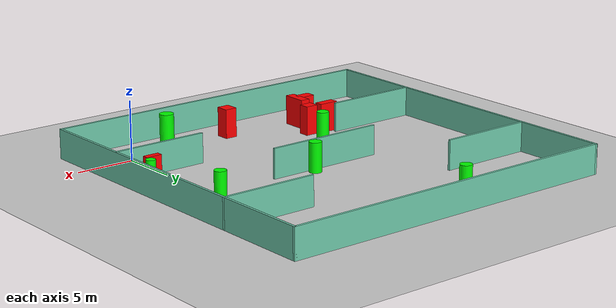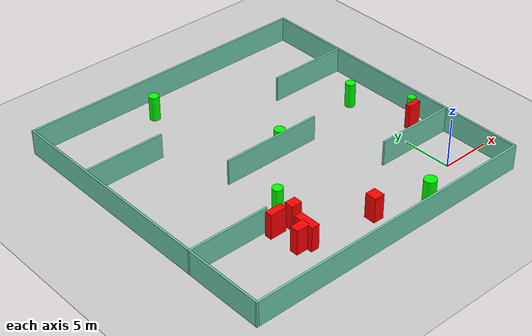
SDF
<sdf version="1.7">
 <world name="default">
  <light name="sun" type="directional">
   <pose>0 0 10 0 -0 0</pose>
   <diffuse>0.8 0.8 0.8 1</diffuse>
   <specular>0.2 0.2 0.2 1</specular>
   <attenuation>
    <range>1000</range>
    <constant>0.9</constant>
    <linear>0.01</linear>
    <quadratic>0.001</quadratic>
   </attenuation>
   <direction>-0.5 0.1 -0.9</direction>
   <spot><inner_angle>0</inner_angle><outer_angle>0</outer_angle><falloff>0</falloff></spot>
  </light>
  <model name="ground_plane">
   <static>1</static>
   <link name="link">
    <collision name="collision">
     <geometry><plane><normal>0 0 1</normal><size>100 100</size></plane></geometry>
     <surface>
      <contact><collide_bitmask>65535</collide_bitmask></contact>
      <friction><ode><mu>100</mu><mu2>50</mu2></ode></friction>
     </surface>
    </collision>
    <visual name="visual">
     <cast_shadows>0</cast_shadows>
     <geometry><plane><normal>0 0 1</normal><size>100 100</size></plane></geometry>
     <material>
      <script><uri>file://media/materials/scripts/gazebo.material</uri><name>Gazebo/Grey</name></script>
     </material>
    </visual>
   </link>
  </model>
  <gravity>0 0 -9.8</gravity>
  <magnetic_field>6e-06 2.3e-05 -4.2e-05</magnetic_field>
  <atmosphere type="adiabatic"/>
  <physics type="ode">
   <max_step_size>0.001</max_step_size>
   <real_time_factor>1</real_time_factor>
   <real_time_update_rate>1000</real_time_update_rate>
  </physics>
  <scene><ambient>0.4 0.4 0.4 1</ambient><background>0.7 0.7 0.7 1</background><shadows>1</shadows></scene>
  <spherical_coordinates>
   <surface_model>EARTH_WGS84</surface_model>
   <latitude_deg>0</latitude_deg>
   <longitude_deg>0</longitude_deg>
   <elevation>0</elevation>
   <heading_deg>0</heading_deg>
  </spherical_coordinates>
  <model name="my_base_walls">
   <link name="Wall_10">
    <collision name="Wall_10_Collision">
     <geometry><box><size>8.2 0.2 2.5</size></box></geometry>
     <pose>0 0 1.25 0 -0 0</pose>
    </collision>
    <visual name="Wall_10_Visual">
     <pose>0 0 1.25 0 -0 0</pose>
     <geometry><box><size>8.2 0.2 2.5</size></box></geometry>
     <material>
      <script><uri>file://media/materials/scripts/gazebo.material</uri><name>Gazebo/Grey</name></script>
      <ambient>0.435294 0.796078 0.67451 1</ambient>
     </material>
     <meta><layer>0</layer></meta>
    </visual>
    <pose>-11 -7 0 0 -0 0</pose>
   </link>
   <link name="Wall_12">
    <collision name="Wall_12_Collision">
     <geometry><box><size>8.2 0.2 2.5</size></box></geometry>
     <pose>0 0 1.25 0 -0 0</pose>
    </collision>
    <visual name="Wall_12_Visual">
     <pose>0 0 1.25 0 -0 0</pose>
     <geometry><box><size>8.2 0.2 2.5</size></box></geometry>
     <material>
      <script><uri>file://media/materials/scripts/gazebo.material</uri><name>Gazebo/Grey</name></script>
      <ambient>0.435294 0.796078 0.67451 1</ambient>
     </material>
     <meta><layer>0</layer></meta>
    </visual>
    <pose>-11 7 0 0 -0 0</pose>
   </link>
   <link name="Wall_14">
    <collision name="Wall_14_Collision">
     <geometry><box><size>8.2 0.2 2.5</size></box></geometry>
     <pose>0 0 1.25 0 -0 0</pose>
    </collision>
    <visual name="Wall_14_Visual">
     <pose>0 0 1.25 0 -0 0</pose>
     <geometry><box><size>8.2 0.2 2.5</size></box></geometry>
     <material>
      <script><uri>file://media/materials/scripts/gazebo.material</uri><name>Gazebo/Grey</name></script>
      <ambient>0.435294 0.796078 0.67451 1</ambient>
     </material>
     <meta><layer>0</layer></meta>
    </visual>
    <pose>11 7 0 0 -0 3.14159</pose>
   </link>
   <link name="Wall_16">
    <collision name="Wall_16_Collision">
     <geometry><box><size>10.2 0.2 2.5</size></box></geometry>
     <pose>0 0 1.25 0 -0 0</pose>
    </collision>
    <visual name="Wall_16_Visual">
     <pose>0 0 1.25 0 -0 0</pose>
     <geometry><box><size>10.2 0.2 2.5</size></box></geometry>
     <material>
      <script><uri>file://media/materials/scripts/gazebo.material</uri><name>Gazebo/Grey</name></script>
      <ambient>0.435294 0.796078 0.67451 1</ambient>
     </material>
     <meta><layer>0</layer></meta>
    </visual>
    <pose>0 0 0 0 -0 3.14159</pose>
   </link>
   <link name="Wall_2">
    <collision name="Wall_2_Collision">
     <geometry><box><size>30.2 0.2 2.5</size></box></geometry>
     <pose>0 0 1.25 0 -0 0</pose>
    </collision>
    <visual name="Wall_2_Visual">
     <pose>0 0 1.25 0 -0 0</pose>
     <geometry><box><size>30.2 0.2 2.5</size></box></geometry>
     <material>
      <script><uri>file://media/materials/scripts/gazebo.material</uri><name>Gazebo/Grey</name></script>
      <ambient>0.435294 0.796078 0.67451 1</ambient>
     </material>
     <meta><layer>0</layer></meta>
    </visual>
    <pose>0 -15 0 0 -0 3.14159</pose>
   </link>
   <link name="Wall_3">
    <collision name="Wall_3_Collision">
     <geometry><box><size>30.2 0.2 2.5</size></box></geometry>
     <pose>0 0 1.25 0 -0 0</pose>
    </collision>
    <visual name="Wall_3_Visual">
     <pose>0 0 1.25 0 -0 0</pose>
     <geometry><box><size>30.2 0.2 2.5</size></box></geometry>
     <material>
      <script><uri>file://media/materials/scripts/gazebo.material</uri><name>Gazebo/Grey</name></script>
      <ambient>0.435294 0.796078 0.67451 1</ambient>
     </material>
     <meta><layer>0</layer></meta>
    </visual>
    <pose>-15 0 0 0 -0 1.5708</pose>
   </link>
   <link name="Wall_4">
    <collision name="Wall_4_Collision">
     <geometry><box><size>30.2 0.2 2.5</size></box></geometry>
     <pose>0 0 1.25 0 -0 0</pose>
    </collision>
    <visual name="Wall_4_Visual">
     <pose>0 0 1.25 0 -0 0</pose>
     <geometry><box><size>30.2 0.2 2.5</size></box></geometry>
     <material>
      <script><uri>file://media/materials/scripts/gazebo.material</uri><name>Gazebo/Grey</name></script>
      <ambient>0.435294 0.796078 0.67451 1</ambient>
     </material>
     <meta><layer>0</layer></meta>
    </visual>
    <pose>0 15 0 0 -0 0</pose>
   </link>
   <link name="Wall_6">
    <collision name="Wall_6_Collision">
     <geometry><box><size>30.2 0.2 2.5</size></box></geometry>
     <pose>0 0 1.25 0 -0 0</pose>
    </collision>
    <visual name="Wall_6_Visual">
     <pose>0 0 1.25 0 -0 0</pose>
     <geometry><box><size>30.2 0.2 2.5</size></box></geometry>
     <material>
      <script><uri>file://media/materials/scripts/gazebo.material</uri><name>Gazebo/Grey</name></script>
      <ambient>0.435294 0.796078 0.67451 1</ambient>
     </material>
     <meta><layer>0</layer></meta>
    </visual>
    <pose>15 0 0 0 -0 1.5708</pose>
   </link>
   <link name="Wall_8">
    <collision name="Wall_8_Collision">
     <geometry><box><size>8.2 0.2 2.5</size></box></geometry>
     <pose>0 0 1.25 0 -0 0</pose>
    </collision>
    <visual name="Wall_8_Visual">
     <pose>0 0 1.25 0 -0 0</pose>
     <geometry><box><size>8.2 0.2 2.5</size></box></geometry>
     <material>
      <script><uri>file://media/materials/scripts/gazebo.material</uri><name>Gazebo/Grey</name></script>
      <ambient>0.435294 0.796078 0.67451 1</ambient>
     </material>
     <meta><layer>0</layer></meta>
    </visual>
    <pose>11 -7 0 0 -0 3.14159</pose>
   </link>
   <static>1</static>
   <pose>-11 11 0 0 -0 0</pose>
  </model>
  <model name="cylinder1">
   <static>1</static>
   <link name="link">
    <inertial>
     <mass>1</mass>
     <inertia><ixx>0.5</ixx><ixy>0</ixy><ixz>0</ixz><iyy>0.5</iyy><iyz>0</iyz><izz>1</izz></inertia>
    </inertial>
    <collision name="collision">
     <geometry><cylinder><radius>0.5219657798590344</radius><length>2.5</length></cylinder></geometry>
    </collision>
    <visual name="visual">
     <geometry><cylinder><radius>0.5219657798590344</radius><length>2.5</length></cylinder></geometry>
     <material>
      <ambient>0 1 0 1</ambient>
      <diffuse>0 1 0 1</diffuse>
      <specular>0.1 0.1 0.1 1</specular>
      <emissive>0 0 0 0</emissive>
     </material>
    </visual>
   </link>
   <pose>-9.565317283463372 11.591743543153596 1.25 0 0 0</pose>
  </model>
  <model name="cylinder2">
   <static>1</static>
   <link name="link">
    <inertial>
     <mass>1</mass>
     <inertia><ixx>0.5</ixx><ixy>0</ixy><ixz>0</ixz><iyy>0.5</iyy><iyz>0</iyz><izz>1</izz></inertia>
    </inertial>
    <collision name="collision">
     <geometry><cylinder><radius>0.3922691962572206</radius><length>2.5</length></cylinder></geometry>
    </collision>
    <visual name="visual">
     <geometry><cylinder><radius>0.3922691962572206</radius><length>2.5</length></cylinder></geometry>
     <material>
      <ambient>0 1 0 1</ambient>
      <diffuse>0 1 0 1</diffuse>
      <specular>0.1 0.1 0.1 1</specular>
      <emissive>0 0 0 0</emissive>
     </material>
    </visual>
   </link>
   <pose>3.023237216129715 7.305496251365518 1.25 0 0 0</pose>
  </model>
  <model name="cylinder3">
   <static>1</static>
   <link name="link">
    <inertial>
     <mass>1</mass>
     <inertia><ixx>0.5</ixx><ixy>0</ixy><ixz>0</ixz><iyy>0.5</iyy><iyz>0</iyz><izz>1</izz></inertia>
    </inertial>
    <collision name="collision">
     <geometry><cylinder><radius>0.5055119163503324</radius><length>2.5</length></cylinder></geometry>
    </collision>
    <visual name="visual">
     <geometry><cylinder><radius>0.5055119163503324</radius><length>2.5</length></cylinder></geometry>
     <material>
      <ambient>0 1 0 1</ambient>
      <diffuse>0 1 0 1</diffuse>
      <specular>0.1 0.1 0.1 1</specular>
      <emissive>0 0 0 0</emissive>
     </material>
    </visual>
   </link>
   <pose>-14.574688057857916 23.343956171218707 1.25 0 0 0</pose>
  </model>
  <model name="cylinder4">
   <static>1</static>
   <link name="link">
    <inertial>
     <mass>1</mass>
     <inertia><ixx>0.5</ixx><ixy>0</ixy><ixz>0</ixz><iyy>0.5</iyy><iyz>0</iyz><izz>1</izz></inertia>
    </inertial>
    <collision name="collision">
     <geometry><cylinder><radius>0.5077850357100223</radius><length>2.5</length></cylinder></geometry>
    </collision>
    <visual name="visual">
     <geometry><cylinder><radius>0.5077850357100223</radius><length>2.5</length></cylinder></geometry>
     <material>
      <ambient>0 1 0 1</ambient>
      <diffuse>0 1 0 1</diffuse>
      <specular>0.1 0.1 0.1 1</specular>
      <emissive>0 0 0 0</emissive>
     </material>
    </visual>
   </link>
   <pose>-15.454144827811955 5.35774519683617 1.25 0 0 0</pose>
  </model>
  <model name="cylinder5">
   <static>1</static>
   <link name="link">
    <inertial>
     <mass>1</mass>
     <inertia><ixx>0.5</ixx><ixy>0</ixy><ixz>0</ixz><iyy>0.5</iyy><iyz>0</iyz><izz>1</izz></inertia>
    </inertial>
    <collision name="collision">
     <geometry><cylinder><radius>0.4939670046292417</radius><length>2.5</length></cylinder></geometry>
    </collision>
    <visual name="visual">
     <geometry><cylinder><radius>0.4939670046292417</radius><length>2.5</length></cylinder></geometry>
     <material>
      <ambient>0 1 0 1</ambient>
      <diffuse>0 1 0 1</diffuse>
      <specular>0.1 0.1 0.1 1</specular>
      <emissive>0 0 0 0</emissive>
     </material>
    </visual>
   </link>
   <pose>0.5239998006802438 12.779665080519326 1.25 0 0 0</pose>
  </model>
  <model name="cylinder6">
   <static>1</static>
   <link name="link">
    <inertial>
     <mass>1</mass>
     <inertia><ixx>0.5</ixx><ixy>0</ixy><ixz>0</ixz><iyy>0.5</iyy><iyz>0</iyz><izz>1</izz></inertia>
    </inertial>
    <collision name="collision">
     <geometry><cylinder><radius>0.5992489807972494</radius><length>2.5</length></cylinder></geometry>
    </collision>
    <visual name="visual">
     <geometry><cylinder><radius>0.5992489807972494</radius><length>2.5</length></cylinder></geometry>
     <material>
      <ambient>0 1 0 1</ambient>
      <diffuse>0 1 0 1</diffuse>
      <specular>0.1 0.1 0.1 1</specular>
      <emissive>0 0 0 0</emissive>
     </material>
    </visual>
   </link>
   <pose>-5.085594161112425 -2.3685976099337083 1.25 0 0 0</pose>
  </model>
  <model name="box1">
   <static>1</static>
   <link name="link">
    <inertial>
     <mass>1</mass>
     <inertia><ixx>0.083</ixx><ixy>0</ixy><ixz>0</ixz><iyy>0.083</iyy><iyz>0</iyz><izz>0.083</izz></inertia>
    </inertial>
    <collision name="collision">
     <geometry><box><size>0.802227432804913 2.092753981802904 2.5</size></box></geometry>
    </collision>
    <visual name="visual">
     <geometry><box><size>0.802227432804913 2.092753981802904 2.5</size></box></geometry>
     <material>
      <ambient>1 0 0 1</ambient>
      <diffuse>1 0 0 1</diffuse>
      <specular>0.1 0.1 0.1 1</specular>
      <emissive>0 0 0 0</emissive>
     </material>
    </visual>
    <sensor name="my_contact" type="contact">
     <contact><collision>box_collision</collision><topic>__default_topic__</topic></contact>
    </sensor>
   </link>
   <pose>-16.607776922457685 0.5654815273350748 1.25 0 0 0</pose>
  </model>
  <model name="box2">
   <static>1</static>
   <link name="link">
    <inertial>
     <mass>1</mass>
     <inertia><ixx>0.083</ixx><ixy>0</ixy><ixz>0</ixz><iyy>0.083</iyy><iyz>0</iyz><izz>0.083</izz></inertia>
    </inertial>
    <collision name="collision">
     <geometry><box><size>1.3599170259146671 0.8480316925354607 2.5</size></box></geometry>
    </collision>
    <visual name="visual">
     <geometry><box><size>1.3599170259146671 0.8480316925354607 2.5</size></box></geometry>
     <material>
      <ambient>1 0 0 1</ambient>
      <diffuse>1 0 0 1</diffuse>
      <specular>0.1 0.1 0.1 1</specular>
      <emissive>0 0 0 0</emissive>
     </material>
    </visual>
    <sensor name="my_contact" type="contact">
     <contact><collision>box_collision</collision><topic>__default_topic__</topic></contact>
    </sensor>
   </link>
   <pose>-17.471714833522032 0.4390593629094752 1.25 0 0 0</pose>
  </model>
  <model name="box3">
   <static>1</static>
   <link name="link">
    <inertial>
     <mass>1</mass>
     <inertia><ixx>0.083</ixx><ixy>0</ixy><ixz>0</ixz><iyy>0.083</iyy><iyz>0</iyz><izz>0.083</izz></inertia>
    </inertial>
    <collision name="collision">
     <geometry><box><size>1.333558970994135 0.5284808222123873 2.5</size></box></geometry>
    </collision>
    <visual name="visual">
     <geometry><box><size>1.333558970994135 0.5284808222123873 2.5</size></box></geometry>
     <material>
      <ambient>1 0 0 1</ambient>
      <diffuse>1 0 0 1</diffuse>
      <specular>0.1 0.1 0.1 1</specular>
      <emissive>0 0 0 0</emissive>
     </material>
    </visual>
    <sensor name="my_contact" type="contact">
     <contact><collision>box_collision</collision><topic>__default_topic__</topic></contact>
    </sensor>
   </link>
   <pose>2.341886404802665 6.517045206382532 1.25 0 0 0</pose>
  </model>
  <model name="box4">
   <static>1</static>
   <link name="link">
    <inertial>
     <mass>1</mass>
     <inertia><ixx>0.083</ixx><ixy>0</ixy><ixz>0</ixz><iyy>0.083</iyy><iyz>0</iyz><izz>0.083</izz></inertia>
    </inertial>
    <collision name="collision">
     <geometry><box><size>1.0787066942366716 0.9037482636716571 2.5</size></box></geometry>
    </collision>
    <visual name="visual">
     <geometry><box><size>1.0787066942366716 0.9037482636716571 2.5</size></box></geometry>
     <material>
      <ambient>1 0 0 1</ambient>
      <diffuse>1 0 0 1</diffuse>
      <specular>0.1 0.1 0.1 1</specular>
      <emissive>0 0 0 0</emissive>
     </material>
    </visual>
    <sensor name="my_contact" type="contact">
     <contact><collision>box_collision</collision><topic>__default_topic__</topic></contact>
    </sensor>
   </link>
   <pose>-15.8157018503858 3.028922341966293 1.25 0 0 0</pose>
  </model>
  <model name="box5">
   <static>1</static>
   <link name="link">
    <inertial>
     <mass>1</mass>
     <inertia><ixx>0.083</ixx><ixy>0</ixy><ixz>0</ixz><iyy>0.083</iyy><iyz>0</iyz><izz>0.083</izz></inertia>
    </inertial>
    <collision name="collision">
     <geometry><box><size>1.6693245848648903 0.710145288034943 2.5</size></box></geometry>
    </collision>
    <visual name="visual">
     <geometry><box><size>1.6693245848648903 0.710145288034943 2.5</size></box></geometry>
     <material>
      <ambient>1 0 0 1</ambient>
      <diffuse>1 0 0 1</diffuse>
      <specular>0.1 0.1 0.1 1</specular>
      <emissive>0 0 0 0</emissive>
     </material>
    </visual>
    <sensor name="my_contact" type="contact">
     <contact><collision>box_collision</collision><topic>__default_topic__</topic></contact>
    </sensor>
   </link>
   <pose>-17.546557591604856 3.2658396138315844 1.25 0 0 0</pose>
  </model>
  <model name="box6">
   <static>1</static>
   <link name="link">
    <inertial>
     <mass>1</mass>
     <inertia><ixx>0.083</ixx><ixy>0</ixy><ixz>0</ixz><iyy>0.083</iyy><iyz>0</iyz><izz>0.083</izz></inertia>
    </inertial>
    <collision name="collision">
     <geometry><box><size>1.0502282898106332 1.1511908827978337 2.5</size></box></geometry>
    </collision>
    <visual name="visual">
     <geometry><box><size>1.0502282898106332 1.1511908827978337 2.5</size></box></geometry>
     <material>
      <ambient>1 0 0 1</ambient>
      <diffuse>1 0 0 1</diffuse>
      <specular>0.1 0.1 0.1 1</specular>
      <emissive>0 0 0 0</emissive>
     </material>
    </visual>
    <sensor name="my_contact" type="contact">
     <contact><collision>box_collision</collision><topic>__default_topic__</topic></contact>
    </sensor>
   </link>
   <pose>-10.034188130045086 -0.6795091890893317 1.25 0 0 0</pose>
  </model>
 </world>
</sdf>
